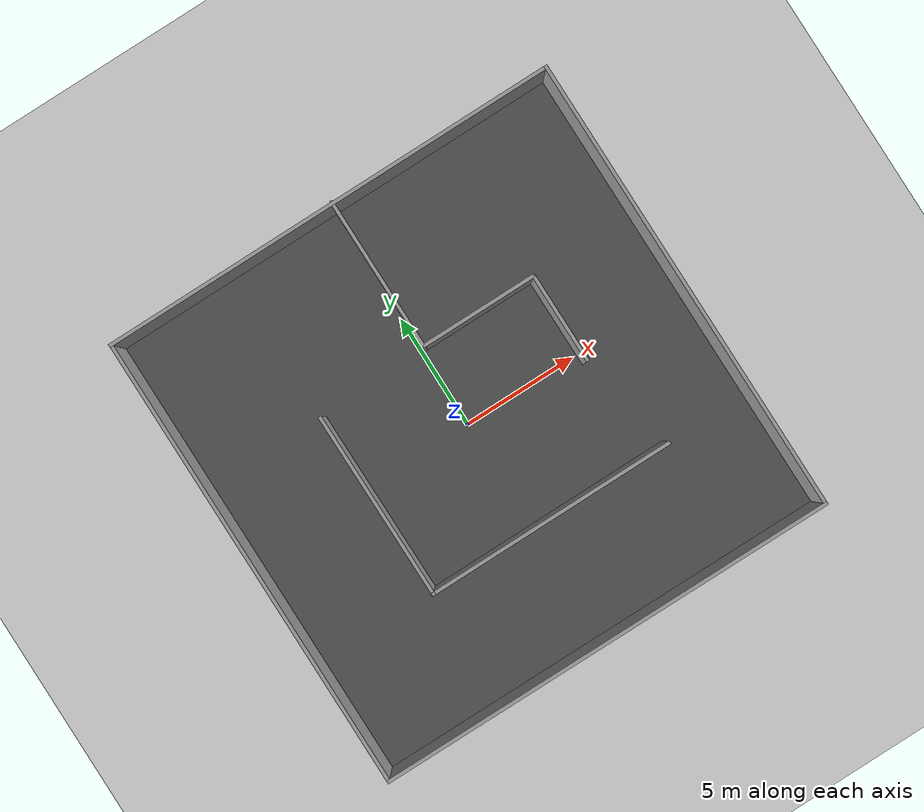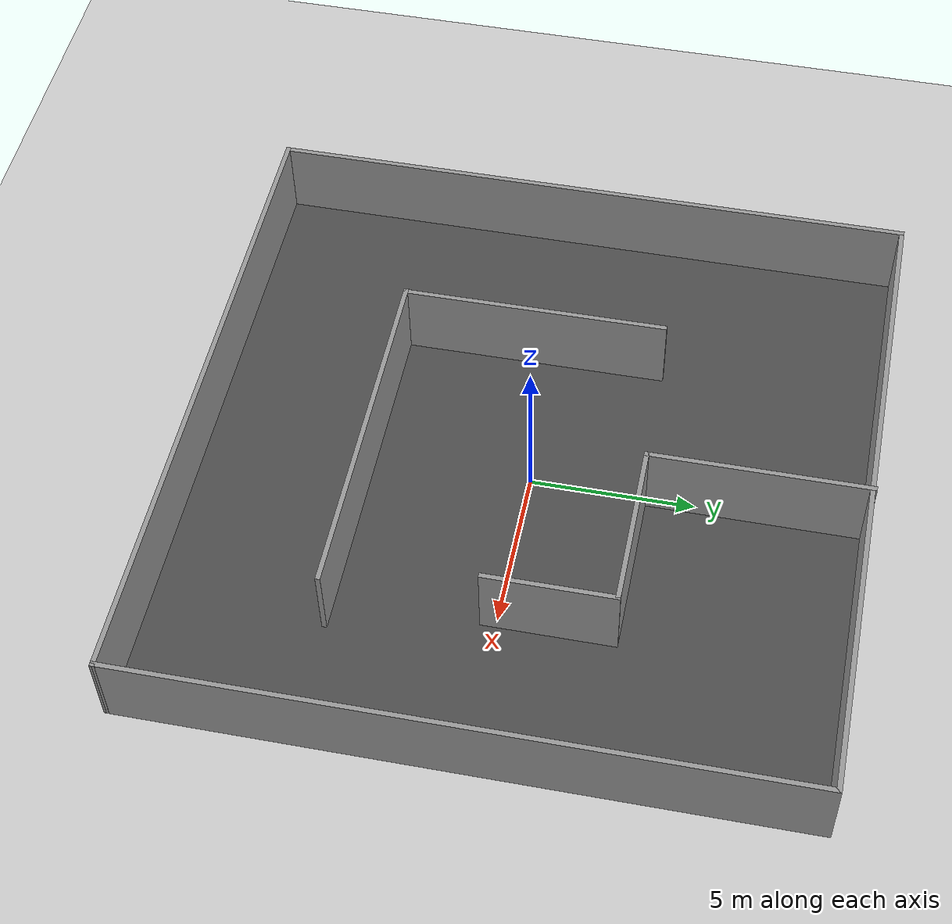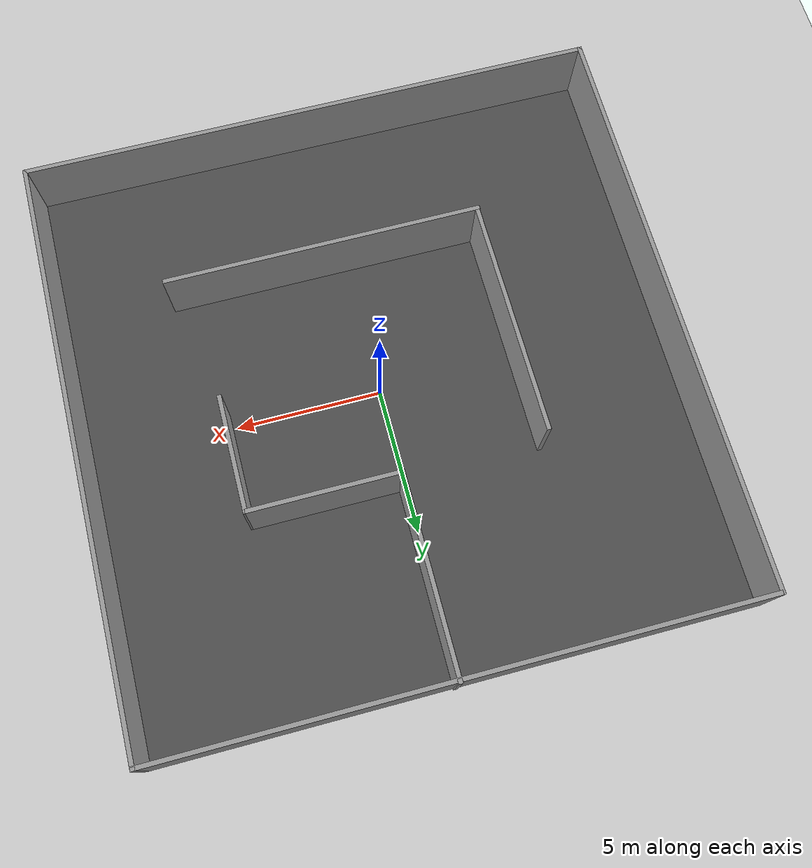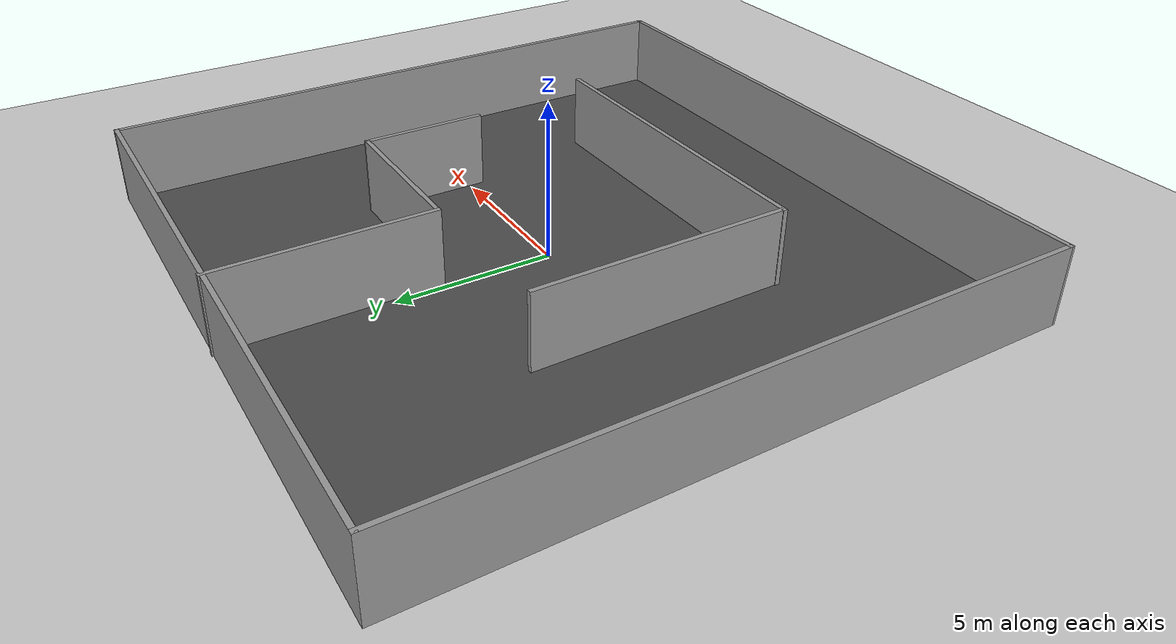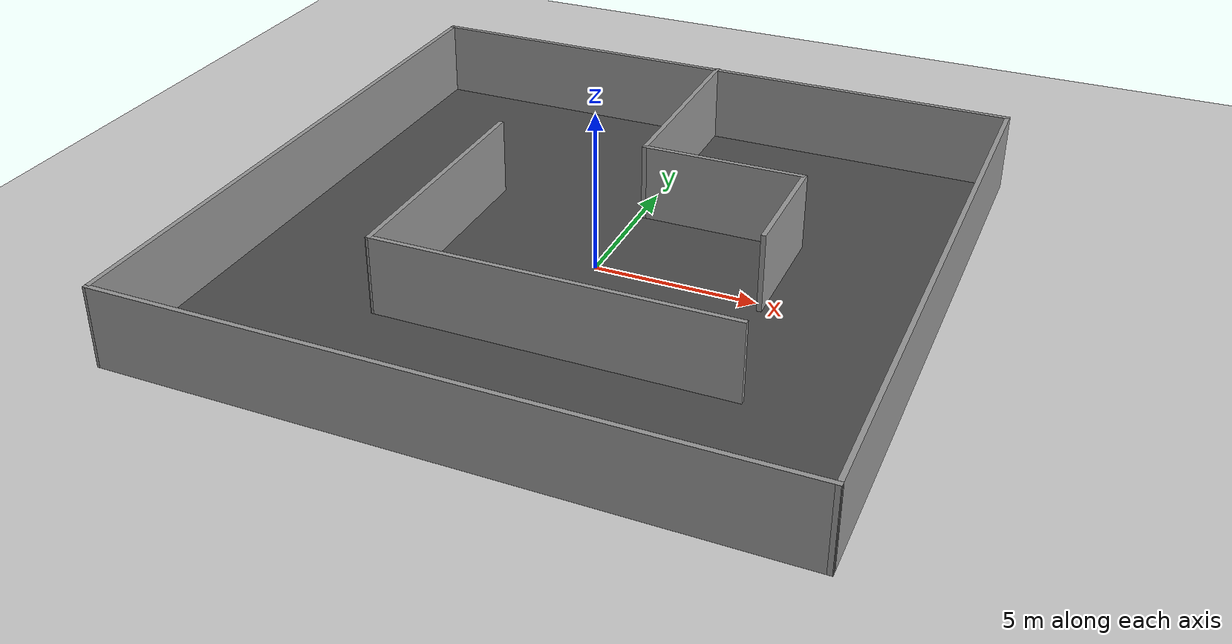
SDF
<sdf version="1.6">
 <world name="default">
  <light name="sun" type="directional">
   <pose>0 0 10 0 -0 0</pose>
   <diffuse>0.8 0.8 0.8 1</diffuse>
   <specular>0.2 0.2 0.2 1</specular>
   <attenuation>
    <range>1000</range>
    <constant>0.9</constant>
    <linear>0.01</linear>
    <quadratic>0.001</quadratic>
   </attenuation>
   <direction>-0.5 0.1 -0.9</direction>
  </light>
  <model name="ground_plane">
   <static>1</static>
   <link name="link">
    <collision name="collision">
     <geometry><plane><normal>0 0 1</normal><size>100 100</size></plane></geometry>
     <surface><friction><ode><mu>100</mu><mu2>50</mu2></ode></friction></surface>
    </collision>
    <visual name="visual">
     <cast_shadows>0</cast_shadows>
     <geometry><plane><normal>0 0 1</normal><size>100 100</size></plane></geometry>
     <material>
      <script><uri>file://media/materials/scripts/gazebo.material</uri><name>Gazebo/Grey</name></script>
     </material>
    </visual>
   </link>
  </model>
  <gravity>0 0 -9.8</gravity>
  <magnetic_field>6e-06 2.3e-05 -4.2e-05</magnetic_field>
  <atmosphere type="adiabatic"/>
  <physics name="default_physics" default="0" type="ode">
   <max_step_size>0.001</max_step_size>
   <real_time_factor>1</real_time_factor>
   <real_time_update_rate>1000</real_time_update_rate>
  </physics>
  <scene><ambient>0.4 0.4 0.4 1</ambient><background>0.7 0.7 0.7 1</background><shadows>1</shadows></scene>
  <spherical_coordinates>
   <surface_model>EARTH_WGS84</surface_model>
   <latitude_deg>0</latitude_deg>
   <longitude_deg>0</longitude_deg>
   <elevation>0</elevation>
   <heading_deg>0</heading_deg>
  </spherical_coordinates>
  <model name="asphalt_plane">
   <static>1</static>
   <link name="link">
    <collision name="collision"><geometry><box><size>20 20 0.1</size></box></geometry></collision>
    <visual name="visual">
     <cast_shadows>0</cast_shadows>
     <geometry><box><size>20 20 0.1</size></box></geometry>
     <material>
      <script>
       <uri>model://asphalt_plane/materials/scripts</uri>
       <uri>model://asphalt_plane/materials/textures</uri>
       <name>vrc/asphalt</name>
      </script>
     </material>
    </visual>
   </link>
  </model>
  <model name="maze_level1">
   <link name="Wall_11">
    <collision name="Wall_11_Collision">
     <geometry><box><size>8.20994 0.15 2.5</size></box></geometry>
     <pose>0 0 1.25 0 -0 0</pose>
    </collision>
    <visual name="Wall_11_Visual">
     <pose>0 0 1.25 0 -0 0</pose>
     <geometry><box><size>8.20994 0.15 2.5</size></box></geometry>
     <material>
      <script><uri>file://media/materials/scripts/gazebo.material</uri><name>Gazebo/Grey</name></script>
      <ambient>1 1 1 1</ambient>
     </material>
     <meta><layer>0</layer></meta>
    </visual>
    <pose>-4.6768 -0.783781 0 0 -0 -1.56695</pose>
   </link>
   <link name="Wall_12">
    <collision name="Wall_12_Collision">
     <geometry><box><size>10.9732 0.15 2.5</size></box></geometry>
     <pose>0 0 1.25 0 -0 0</pose>
    </collision>
    <visual name="Wall_12_Visual">
     <pose>0 0 1.25 0 -0 0</pose>
     <geometry><box><size>10.9732 0.15 2.5</size></box></geometry>
     <material>
      <script><uri>file://media/materials/scripts/gazebo.material</uri><name>Gazebo/Grey</name></script>
      <ambient>1 1 1 1</ambient>
     </material>
     <meta><layer>0</layer></meta>
    </visual>
    <pose>0.727288 -4.81375 0 0 -0 0</pose>
   </link>
   <link name="Wall_16">
    <collision name="Wall_16_Collision">
     <geometry><box><size>6.75 0.15 2.5</size></box></geometry>
     <pose>0 0 1.25 0 -0 0</pose>
    </collision>
    <visual name="Wall_16_Visual">
     <pose>0 0 1.25 0 -0 0</pose>
     <geometry><box><size>6.75 0.15 2.5</size></box></geometry>
     <material>
      <script><uri>file://media/materials/scripts/gazebo.material</uri><name>Gazebo/Grey</name></script>
      <ambient>1 1 1 1</ambient>
     </material>
     <meta><layer>0</layer></meta>
    </visual>
    <pose>0.174209 6.7614 0 0 -0 -1.5708</pose>
   </link>
   <link name="Wall_17">
    <collision name="Wall_17_Collision">
     <geometry><box><size>5.14347 0.15 2.5</size></box></geometry>
     <pose>0 0 1.25 0 -0 0</pose>
    </collision>
    <visual name="Wall_17_Visual">
     <pose>0 0 1.25 0 -0 0</pose>
     <geometry><box><size>5.14347 0.15 2.5</size></box></geometry>
     <material>
      <script><uri>file://media/materials/scripts/gazebo.material</uri><name>Gazebo/Grey</name></script>
      <ambient>1 1 1 1</ambient>
     </material>
     <meta><layer>0</layer></meta>
    </visual>
    <pose>2.67095 3.46141 0 0 -0 0</pose>
   </link>
   <link name="Wall_18">
    <collision name="Wall_18_Collision">
     <geometry><box><size>4 0.15 2.5</size></box></geometry>
     <pose>0 0 1.25 0 -0 0</pose>
    </collision>
    <visual name="Wall_18_Visual">
     <pose>0 0 1.25 0 -0 0</pose>
     <geometry><box><size>4 0.15 2.5</size></box></geometry>
     <material>
      <script><uri>file://media/materials/scripts/gazebo.material</uri><name>Gazebo/Grey</name></script>
      <ambient>1 1 1 1</ambient>
     </material>
     <meta><layer>0</layer></meta>
    </visual>
    <pose>5.22886 1.5364 0 0 -0 -1.5708</pose>
   </link>
   <link name="Wall_2">
    <collision name="Wall_2_Collision">
     <geometry><box><size>20.1501 0.15 2.5</size></box></geometry>
     <pose>0 0 1.25 0 -0 0</pose>
    </collision>
    <visual name="Wall_2_Visual">
     <pose>0 0 1.25 0 -0 0</pose>
     <geometry><box><size>20.1501 0.15 2.5</size></box></geometry>
     <material>
      <script><uri>file://media/materials/scripts/gazebo.material</uri><name>Gazebo/Grey</name></script>
      <ambient>1 1 1 1</ambient>
     </material>
     <meta><layer>0</layer></meta>
    </visual>
    <pose>0 -10.0231 0 0 -0 -0.0038</pose>
   </link>
   <link name="Wall_7">
    <collision name="Wall_7_Collision">
     <geometry><box><size>20.15 0.15 2.5</size></box></geometry>
     <pose>0 0 1.25 0 -0 0</pose>
    </collision>
    <visual name="Wall_7_Visual">
     <pose>0 0 1.25 0 -0 0</pose>
     <geometry><box><size>20.15 0.15 2.5</size></box></geometry>
     <material>
      <script><uri>file://media/materials/scripts/gazebo.material</uri><name>Gazebo/Grey</name></script>
      <ambient>1 1 1 1</ambient>
     </material>
     <meta><layer>0</layer></meta>
    </visual>
    <pose>-10 0.01488 0 0 -0 1.5708</pose>
   </link>
   <link name="Wall_8">
    <collision name="Wall_8_Collision">
     <geometry><box><size>20.15 0.15 2.5</size></box></geometry>
     <pose>0 0 1.25 0 -0 0</pose>
    </collision>
    <visual name="Wall_8_Visual">
     <pose>0 0 1.25 0 -0 0</pose>
     <geometry><box><size>20.15 0.15 2.5</size></box></geometry>
     <material>
      <script><uri>file://media/materials/scripts/gazebo.material</uri><name>Gazebo/Grey</name></script>
      <ambient>1 1 1 1</ambient>
     </material>
     <meta><layer>0</layer></meta>
    </visual>
    <pose>0 10.0149 0 0 -0 0</pose>
   </link>
   <link name="Wall_9">
    <collision name="Wall_9_Collision">
     <geometry><box><size>20.2264 0.15 2.5</size></box></geometry>
     <pose>0 0 1.25 0 -0 0</pose>
    </collision>
    <visual name="Wall_9_Visual">
     <pose>0 0 1.25 0 -0 0</pose>
     <geometry><box><size>20.2264 0.15 2.5</size></box></geometry>
     <material>
      <script><uri>file://media/materials/scripts/gazebo.material</uri><name>Gazebo/Grey</name></script>
      <ambient>1 1 1 1</ambient>
     </material>
     <meta><layer>0</layer></meta>
    </visual>
    <pose>10 -0.02312 0 0 -0 -1.5708</pose>
   </link>
   <static>1</static>
  </model>
 </world>
</sdf>
